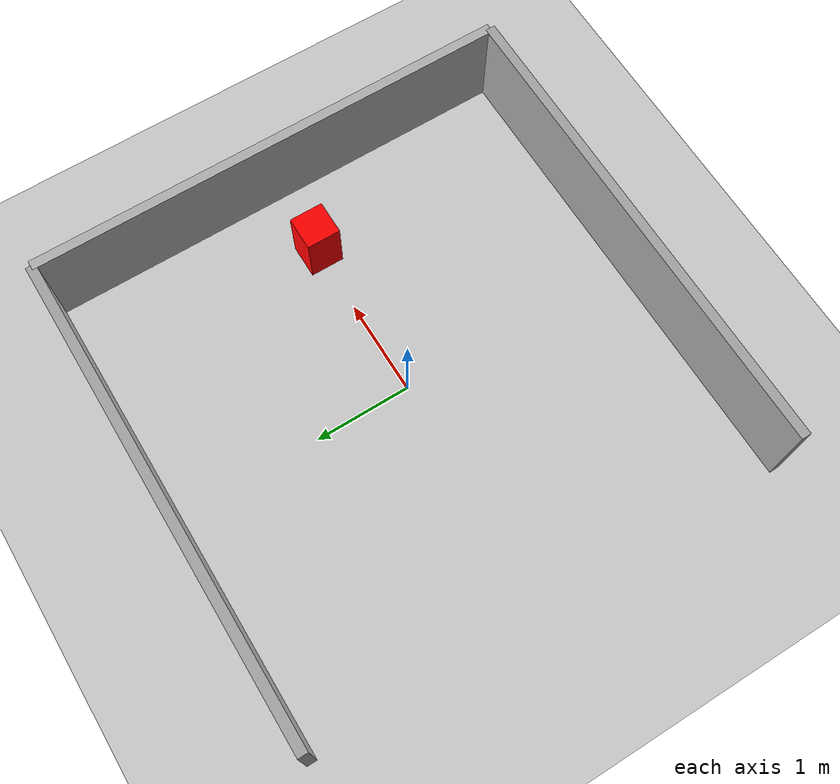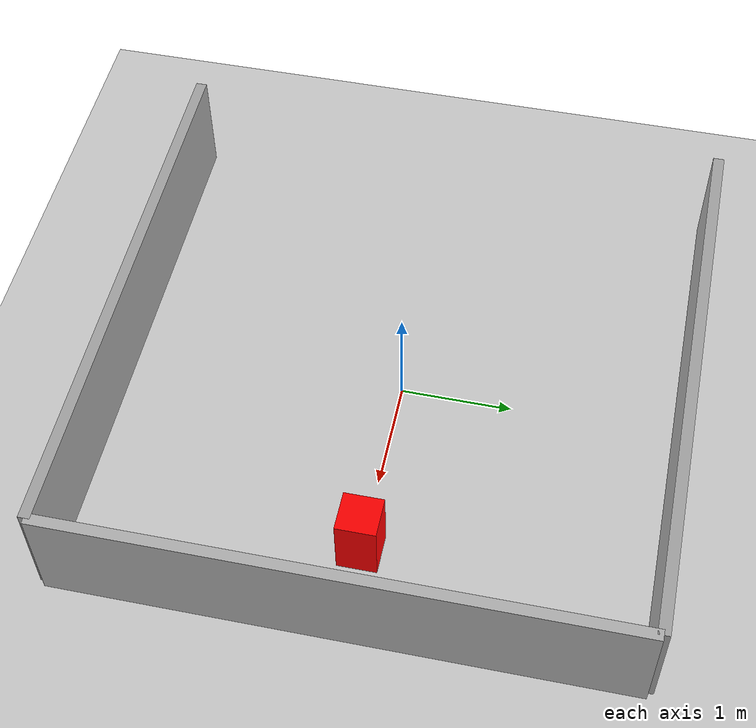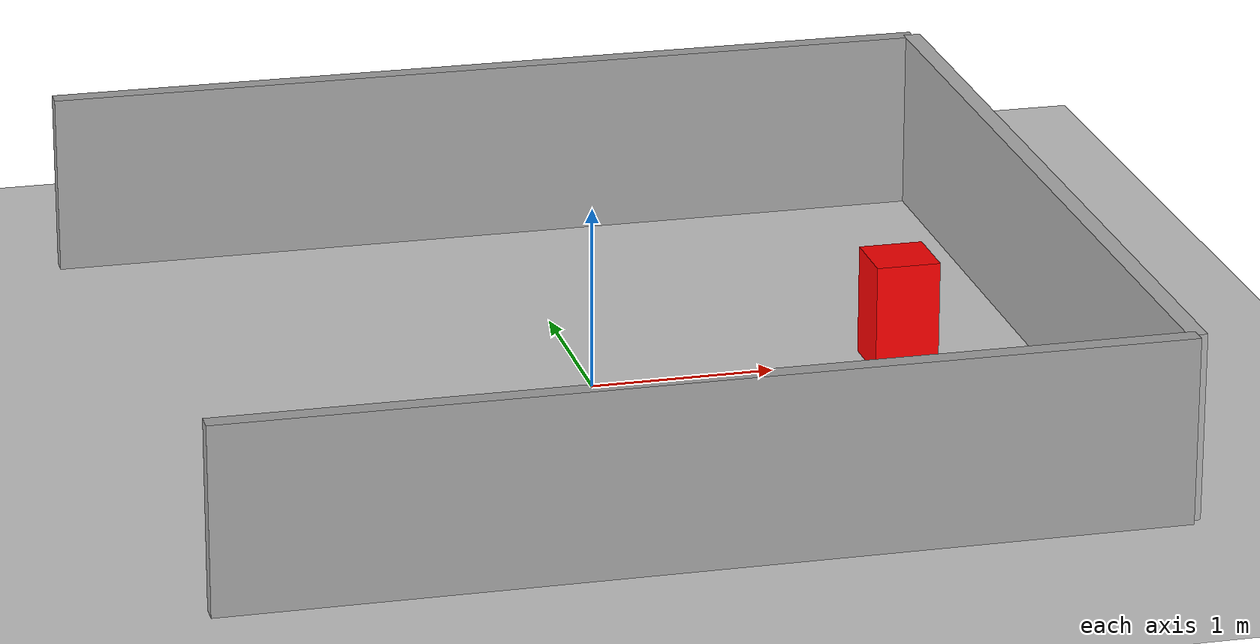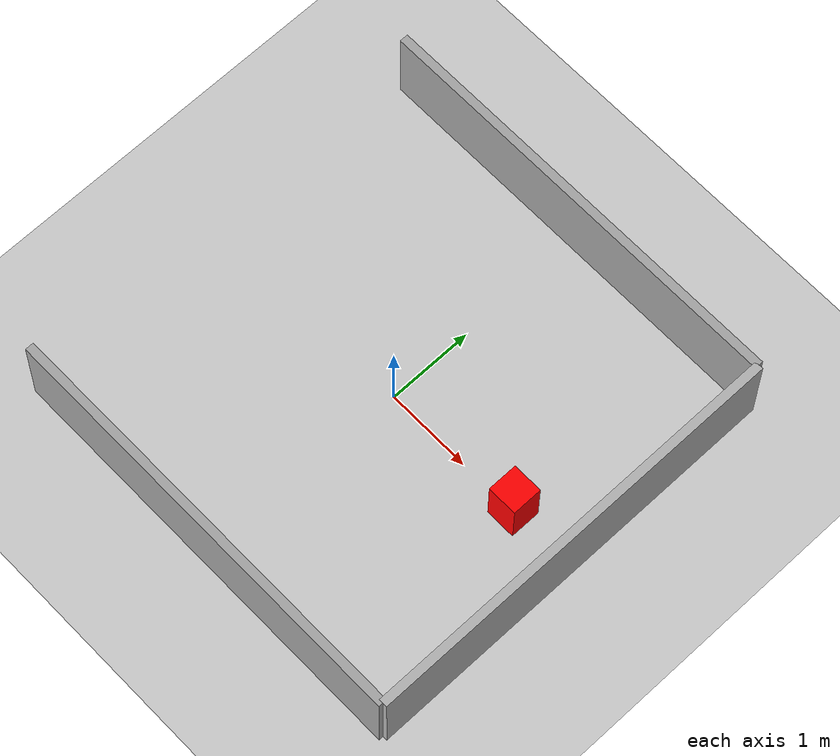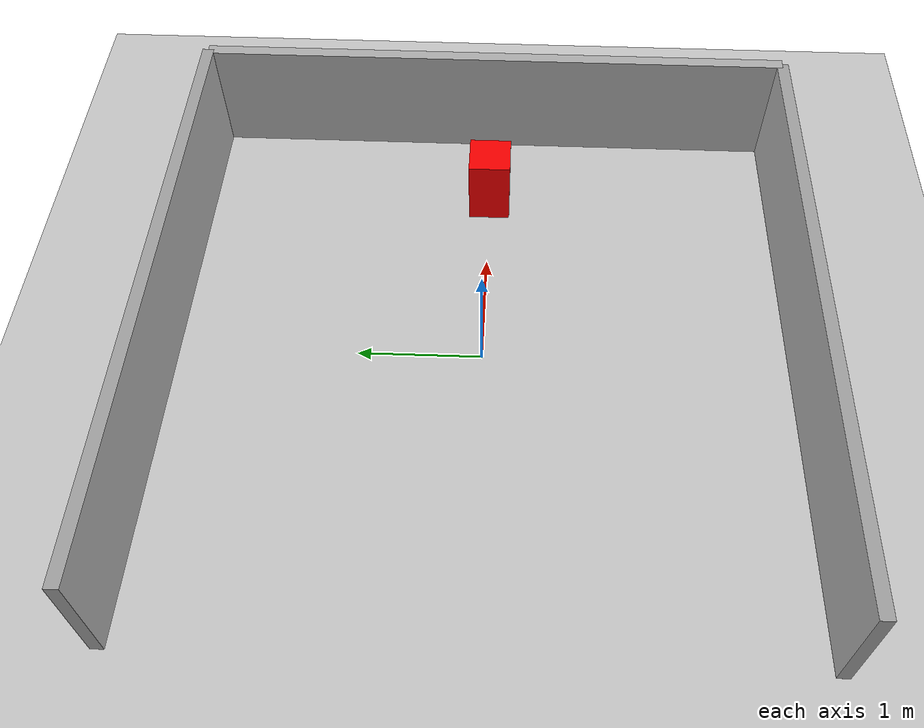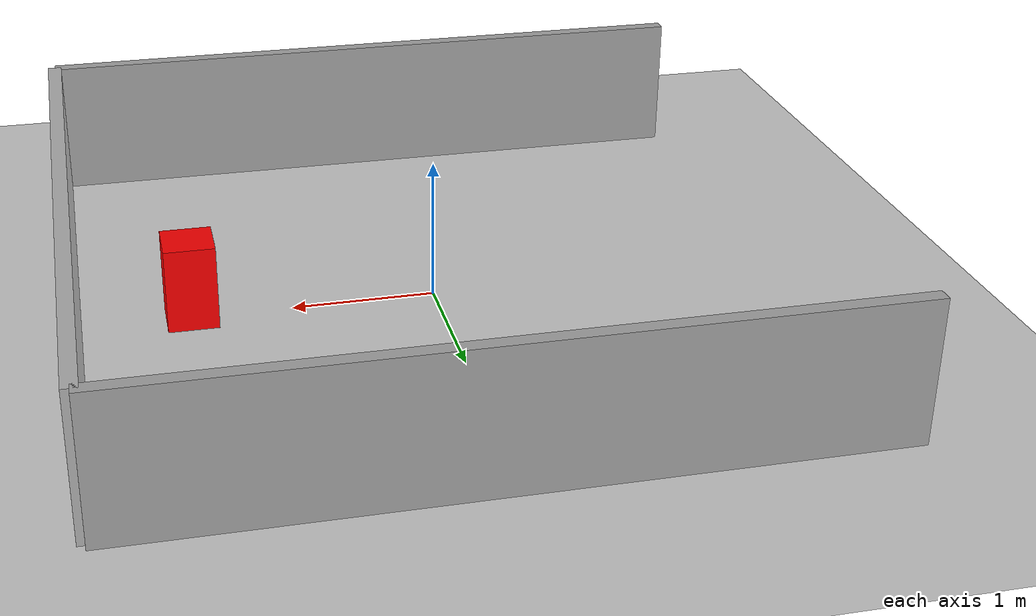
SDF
<?xml version="1.0"?>
<sdf version="1.6">
  <world name="simple_room">
    <gravity>0 0 -9.81</gravity>
    <physics type="ode">
      <real_time_update_rate>1000</real_time_update_rate>
      <max_step_size>0.001</max_step_size>
    </physics>

    <include>
      <uri>model://ground_plane</uri>
    </include>
    <include>
      <uri>model://sun</uri>
    </include>

    <model name="back_wall">
      <static>true</static>
      <pose>2.5 0 0.5 0 0 0</pose>
      <link name="link">
        <collision name="collision"><geometry><box><size>0.1 5 1</size></box></geometry></collision>
        <visual name="visual">
          <geometry><box><size>0.1 5 1</size></box></geometry>
          <material><ambient>0.7 0.7 0.7 1</ambient><diffuse>0.7 0.7 0.7 1</diffuse></material>
        </visual>
      </link>
    </model>

    <model name="left_wall">
      <static>true</static>
      <pose>0 2.5 0.5 0 0 0</pose>
      <link name="link">
        <collision name="collision"><geometry><box><size>5 0.1 1</size></box></geometry></collision>
        <visual name="visual">
          <geometry><box><size>5 0.1 1</size></box></geometry>
          <material><ambient>0.65 0.65 0.65 1</ambient><diffuse>0.65 0.65 0.65 1</diffuse></material>
        </visual>
      </link>
    </model>

    <model name="right_wall">
      <static>true</static>
      <pose>0 -2.5 0.5 0 0 0</pose>
      <link name="link">
        <collision name="collision"><geometry><box><size>5 0.1 1</size></box></geometry></collision>
        <visual name="visual">
          <geometry><box><size>5 0.1 1</size></box></geometry>
          <material><ambient>0.65 0.65 0.65 1</ambient><diffuse>0.65 0.65 0.65 1</diffuse></material>
        </visual>
      </link>
    </model>

    <model name="red_target">
      <static>true</static>
      <pose>1.7 0 0.3 0 0 0</pose>
      <link name="link">
        <collision name="collision"><geometry><box><size>0.35 0.35 0.6</size></box></geometry></collision>
        <visual name="visual">
          <geometry><box><size>0.35 0.35 0.6</size></box></geometry>
          <material>
            <ambient>1 0 0 1</ambient>
            <diffuse>1 0 0 1</diffuse>
            <specular>0.1 0.1 0.1 1</specular>
          </material>
        </visual>
      </link>
    </model>
  </world>
</sdf>
